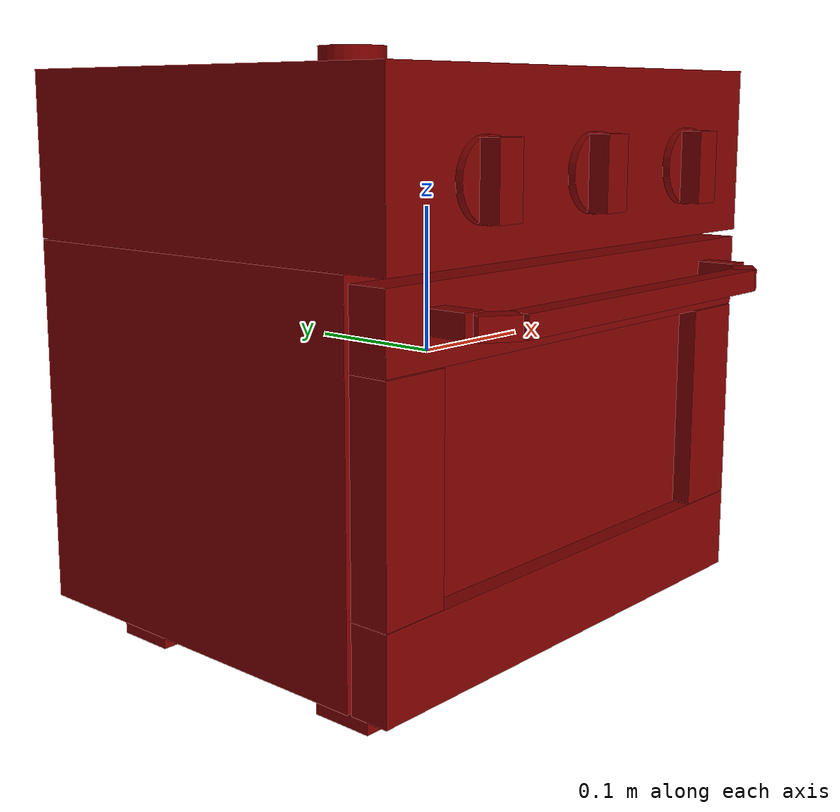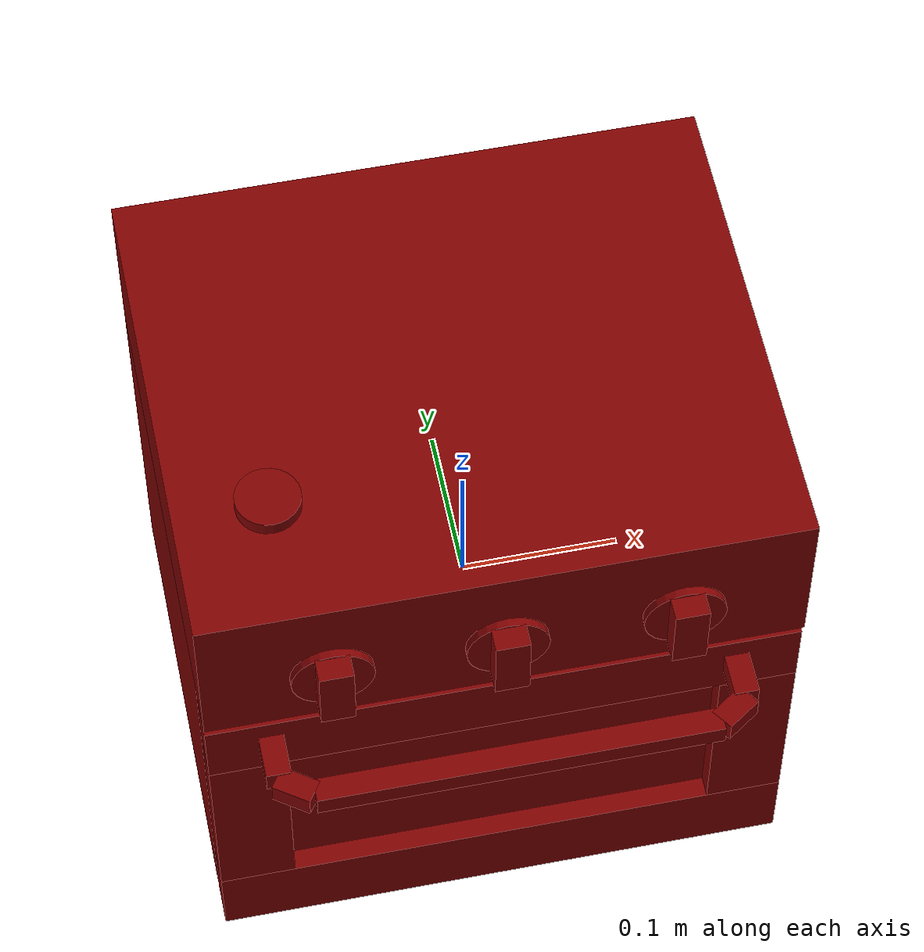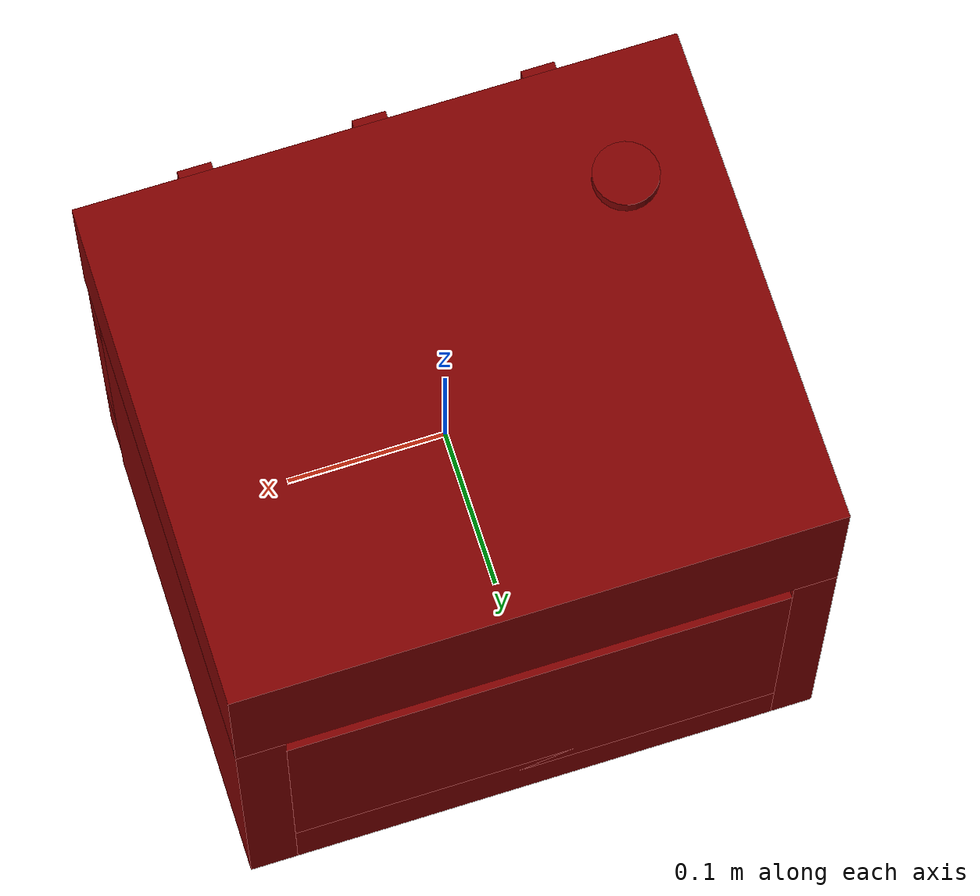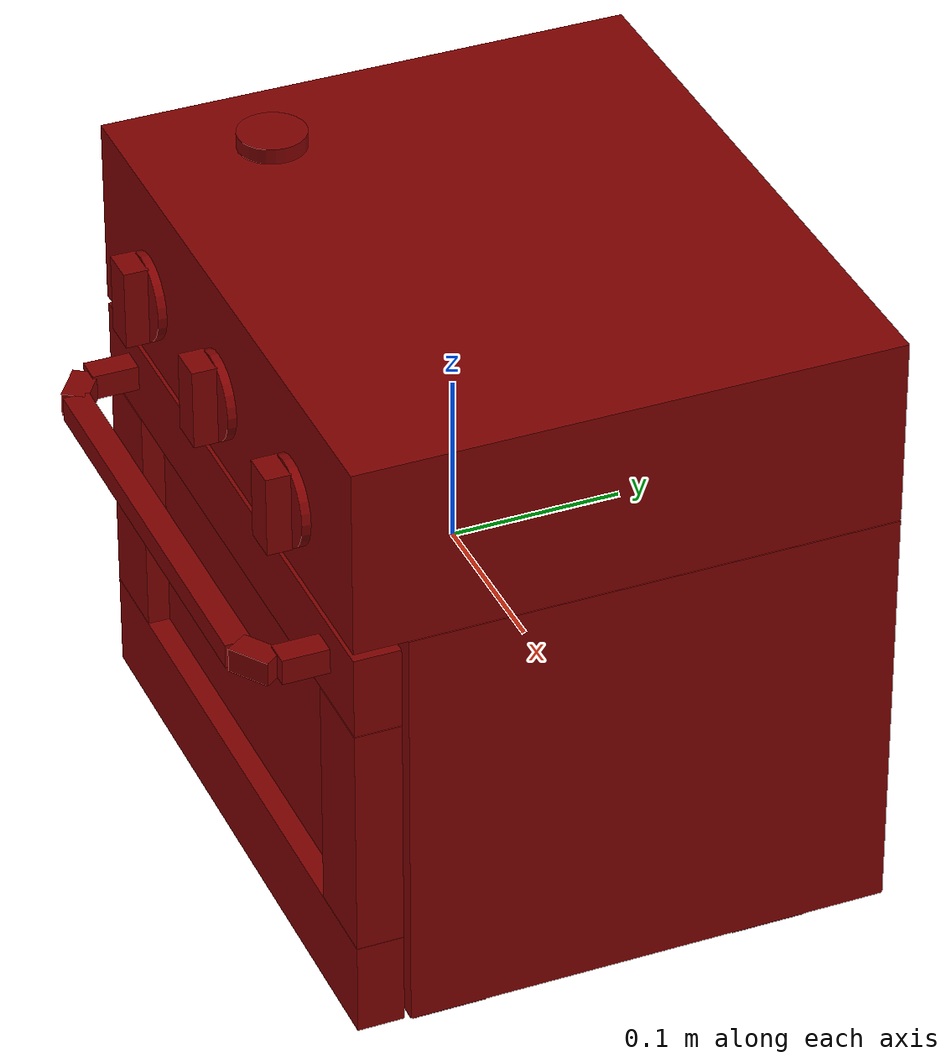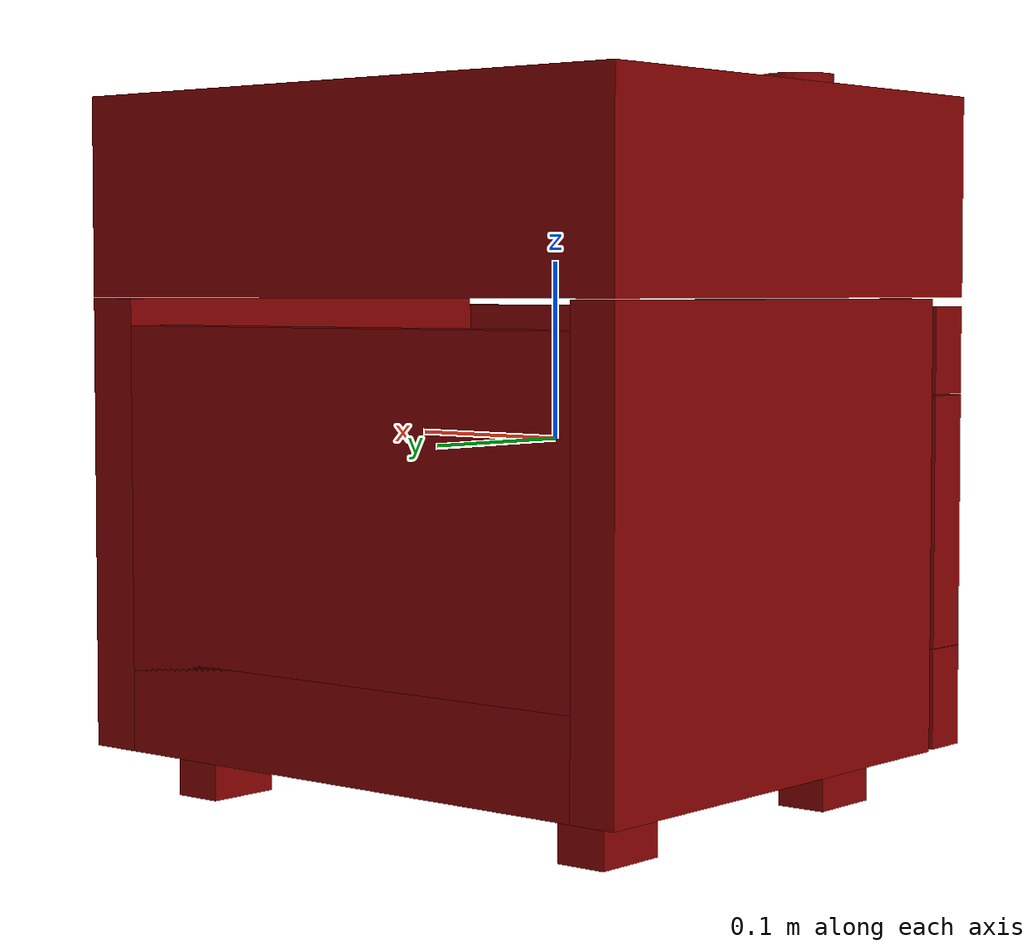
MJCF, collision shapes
<?xml version='1.0' encoding='UTF-8'?>
<mujoco model="model">
  <compiler angle="radian"/>
  <asset>
    <mesh file="visuals/Body001.obj" name="Body001_vis"/>
    <mesh file="visuals/Door001.obj" name="Door001_vis"/>
    <mesh file="visuals/Door001_Clear.obj" name="Door001_Clear_vis"/>
    <mesh file="visuals/Knob001.obj" name="Knob001_vis"/>
    <mesh file="visuals/Knob002.obj" name="Knob002_vis"/>
    <mesh file="visuals/Knob003.obj" name="Knob003_vis"/>
    <mesh file="visuals/Shelf001.obj" name="Shelf001_vis"/>
    <texture file="visuals/T_BC001.png" name="Body001_material" type="2d"/>
    <material name="Body001_material" rgba="1 1 1 1.0" texture="Body001_material" shininess="0.5" specular="1"/>
    <texture file="visuals/T_BC001.png" name="Door001_material" type="2d"/>
    <material name="Door001_material" rgba="1 1 1 1.0" texture="Door001_material" shininess="0.5" specular="1"/>
    <material name="Door001_Clear_material" rgba="0.021757163107395172 0.021757163107395172 0.021757163107395172 0.800000011920929" shininess="0.4472135901451111" specular="0.3103448502657381"/>
    <texture file="visuals/T_BC001.png" name="Knob001_material" type="2d"/>
    <material name="Knob001_material" rgba="1 1 1 1.0" texture="Knob001_material" shininess="0.5" specular="0.3103448502657381"/>
    <texture file="visuals/T_BC001.png" name="Knob002_material" type="2d"/>
    <material name="Knob002_material" rgba="1 1 1 1.0" texture="Knob002_material" shininess="0.5" specular="0.3103448502657381"/>
    <texture file="visuals/T_BC001.png" name="Knob003_material" type="2d"/>
    <material name="Knob003_material" rgba="1 1 1 1.0" texture="Knob003_material" shininess="0.5" specular="0.3103448502657381"/>
    <texture file="visuals/T_BC001.png" name="Shelf001_material" type="2d"/>
    <material name="Shelf001_material" rgba="1 1 1 1.0" texture="Shelf001_material" shininess="0.5" specular="11"/>
  </asset>
  <default>
    <default class="visual">
      <geom conaffinity="0" contype="0" group="1" type="mesh"/>
    </default>
    <default class="collision">
      <geom group="0" rgba="0.5 0 0 0.5"/>
    </default>
    <default class="spawn">
      <geom group="0" rgba="1 1 1 0.5" contype="0" conaffinity="0"/>
      <site group="0" rgba="1 1 1 0.5"/>
    </default>
    <default class="region">
      <geom group="1" conaffinity="0" contype="0" rgba="0 1 0 0"/>
    </default>
  </default>
  <worldbody>
    <body>
      <body name="object">
        <geom mesh="Body001_vis" type="mesh" solimp="0.998 0.998 0.001" solref="0.001 1" density="100" friction="0.95 0.3 0.1" class="visual" material="Body001_material"/>
        <geom class="collision" type="box" pos="2.852175384759903e-09 0.024101076647639275 0.1357605755329132" size="0.18508854508399963 0.15699924528598785 0.055739786475896835" quat="1.0 0.0 0.0 0.0"/>
        <geom class="collision" type="box" pos="0.16979986429214478 0.039555624127388 -0.04654950648546219" size="0.01528869103640318 0.14154471457004547 0.1259056031703949" quat="1.0 0.0 0.0 0.0"/>
        <geom class="collision" type="box" pos="-0.17158065736293793 0.039555624127388 -0.04654950648546219" size="0.013507887721061707 0.14154471457004547 0.1259056031703949" quat="1.0 0.0 0.0 0.0"/>
        <geom class="collision" type="box" pos="-0.001145911286585033 0.039555624127388 -0.14608407020568848" size="0.16024622321128845 0.14154471457004547 0.026371030136942863" quat="1.0 0.0 0.0 0.0"/>
        <geom class="collision" type="box" pos="0.13840268552303314 -0.06583800166845322 -0.18757016956806183" size="0.014635629020631313 0.02180272527039051 0.014033558778464794" quat="1.0 0.0 0.0 0.0"/>
        <geom class="collision" type="box" pos="-0.13884401321411133 -0.06583800166845322 -0.18757016956806183" size="0.014635629020631313 0.02180272527039051 0.014033558778464794" quat="1.0 0.0 0.0 0.0"/>
        <geom class="collision" type="box" pos="-0.13884401321411133 0.12719383835792542 -0.18757016956806183" size="0.014635629020631313 0.02180272527039051 0.014033558778464794" quat="1.0 0.0 0.0 0.0"/>
        <geom class="collision" type="box" pos="0.13840268552303314 0.12719383835792542 -0.18757016956806183" size="0.014635629020631313 0.02180272527039051 0.014033558778464794" quat="1.0 0.0 0.0 0.0"/>
        <geom class="collision" type="box" pos="-0.001145911286585033 0.16271737217903137 -0.033729590475559235" size="0.16024622321128845 0.018382957205176353 0.09829637408256531" quat="1.0 0.0 0.0 0.0"/>
        <geom class="collision" type="cylinder" pos="-0.12738053500652313 -0.053947120904922485 0.19717708230018616" size="0.0199985820800066 0.0046111056581139565" quat="1.0 0.0 0.0 0.0"/>
        <body name="Door001">
          <joint axis="1.0 0.0 0.0" pos="-0.0004288032650947571 -0.10672692954540253 -0.1699555367231369" limited="true" name="Door001_joint" range="0.0 1.5707963267948966" type="hinge" damping="1" frictionloss="1" armature=".01" stiffness="1" springref="-0.4"/>
          <geom mesh="Door001_vis" type="mesh" solimp="0.998 0.998 0.001" solref="0.001 1" density="100" friction="0.95 0.3 0.1" class="visual" material="Door001_material"/>
          <geom class="collision" type="box" pos="-0.0004418120952323079 -0.11903399229049683 0.050599973648786545" size="0.1846461445093155 0.013507278636097908 0.024286596104502678" quat="1.0 0.0 0.0 0.0"/>
          <geom class="collision" type="box" pos="-0.0004418120952323079 -0.11903399229049683 -0.14370819926261902" size="0.18464617431163788 0.013507280498743057 0.028107164427638054" quat="1.0 0.0 0.0 0.0"/>
          <geom class="collision" type="box" pos="0.15989476442337036 -0.11903399229049683 -0.044859565794467926" size="0.02431010641157627 0.013507282361388206 0.07044404745101929" quat="1.0 0.0 0.0 0.0"/>
          <geom class="collision" type="box" pos="-0.16092289984226227 -0.11903399229049683 -0.044859565794467926" size="0.02416558377444744 0.013507284224033356 0.07044406235218048" quat="1.0 0.0 0.0 0.0"/>
          <geom class="collision" type="box" pos="7.993763574631885e-05 -0.17382845282554626 0.05253109708428383" size="0.12579500675201416 0.007679699920117855 0.007168726529926062" quat="1.0 0.0 0.0 0.0"/>
          <geom class="collision" type="box" pos="0.13491736352443695 -0.16760671138763428 0.05253109708428383" size="0.012498950585722923 0.007679718546569347 0.007168740965425968" quat="0.9546672701835632 0.0 0.0 0.2976749837398529"/>
          <geom class="collision" type="box" pos="0.14402510225772858 -0.1461496204137802 0.05339349806308746" size="0.007692680228501558 0.013507288880646229 0.007585875224322081" quat="1.0 0.0 0.0 0.0"/>
          <geom class="collision" type="box" pos="-0.14513513445854187 -0.1461496204137802 0.05339349806308746" size="0.00769268162548542 0.013507290743291378 0.007585876155644655" quat="1.0 0.0 0.0 0.0"/>
          <geom class="collision" type="box" pos="-0.13602739572525024 -0.16760671138763428 0.05253109708428383" size="0.012498950585722923 0.007679718546569347 0.007168740965425968" quat="0.954667329788208 0.0 -0.0 -0.29767486453056335"/>
          <body name="Door001_Clear">
            <geom mesh="Door001_Clear_vis" type="mesh" solimp="0.998 0.998 0.001" solref="0.001 1" density="100" friction="0.95 0.3 0.1" class="visual" material="Door001_Clear_material"/>
            <geom class="collision" type="box" pos="-0.0004287729971110821 -0.11865300685167313 -0.04464877024292946" size="0.14006547629833221 0.0008621452143415809 0.07160481065511703" quat="1.0 0.0 0.0 0.0"/>
          </body>
        </body>
        <body name="Knob001">
          <joint axis="0.0 0.9999999403953552 0.0" pos="-0.10621856153011322 -0.14094994962215424 0.12773217260837555" limited="true" name="Knob001_joint" range="0.0 5.078908123303499" type="hinge" damping="0.05" armature="0.001"/>
          <geom mesh="Knob001_vis" type="mesh" solimp="0.998 0.998 0.001" solref="0.001 1" density="100" friction="0.95 0.3 0.1" class="visual" material="Knob001_material"/>
          <geom class="collision" type="cylinder" pos="-0.10627137869596481 -0.13721776008605957 0.1276916265487671" size="0.025301121175289154 0.0025892877019941807" quat="0.7071067094802856 0.7071068286895752 0.0 0.0"/>
          <geom class="collision" type="box" pos="-0.10621856153011322 -0.14638282358646393 0.12773217260837555" size="0.010509218089282513 0.007276811636984348 0.02365013211965561" quat="1.0 0.0 0.0 0.0"/>
        </body>
        <body name="Knob002">
          <joint axis="0.0 1.0 0.0" pos="-0.0009228978306055069 -0.14116448163986206 0.12765637040138245" limited="true" name="Knob002_joint" range="0.0 4.886921905584122" type="hinge" damping="0.05" armature="0.001"/>
          <geom mesh="Knob002_vis" type="mesh" solimp="0.998 0.998 0.001" solref="0.001 1" density="100" friction="0.95 0.3 0.1" class="visual" material="Knob002_material"/>
          <geom class="collision" type="cylinder" pos="-0.0007735916296951473 -0.13705313205718994 0.1276916265487671" size="0.025301121175289154 0.0025892877019941807" quat="0.7071067094802856 0.7071068286895752 0.0 0.0"/>
          <geom class="collision" type="box" pos="-0.0011445118580013514 -0.14638282358646393 0.12773217260837555" size="0.010509219020605087 0.007276811636984348 0.023650135844945908" quat="1.0 0.0 0.0 0.0"/>
        </body>
        <body name="Knob003">
          <joint axis="0.0 1.0 0.0" pos="0.10676044225692749 -0.14094993472099304 0.12804697453975677" limited="true" name="Knob003_joint" range="0.0 4.71238898038469" type="hinge" damping="0.05" armature="0.001" springref="-0.4"/>
          <geom mesh="Knob003_vis" type="mesh" solimp="0.998 0.998 0.001" solref="0.001 1" density="100" friction="0.95 0.3 0.1" class="visual" material="Knob003_material"/>
          <geom class="collision" type="cylinder" pos="0.10678509622812271 -0.13699854910373688 0.12805821001529694" size="0.025301121175289154 0.0025892877019941807" quat="0.7071067094802856 0.7071068286895752 0.0 0.0"/>
          <geom class="collision" type="box" pos="0.1067410409450531 -0.14638282358646393 0.12773217260837555" size="0.010509220883250237 0.007276811636984348 0.023650137707591057" quat="1.0 0.0 0.0 0.0"/>
        </body>
        <body name="Shelf001">
          <joint axis="0.0 -1.0 0.0" pos="-0.0023382380604743958 0.004356682300567627 -0.0849299430847168" limited="true" name="Shelf001_joint" range="0.0 0.15" type="slide" damping="1" frictionloss="1" armature=".01" stiffness="0.05"/>
          <geom mesh="Shelf001_vis" type="mesh" solimp="0.998 0.998 0.001" solref="0.001 1" density="100" friction="0.95 0.3 0.1" class="visual" material="Shelf001_material"/>
          <geom class="collision" type="box" pos="-0.0019281281856819987 0.004307358991354704 -0.09186424314975739" size="0.12804536521434784 0.07639605551958084 0.001664346200414002" quat="1.0 0.0 0.0 0.0"/>
          <geom class="collision" type="box" pos="-0.153961643576622 0.004307358991354704 -0.07758800685405731" size="0.0022650649771094322 0.07639606297016144 0.0021299475338310003" quat="1.0 0.0 0.0 0.0"/>
          <geom class="collision" type="box" pos="-0.13991807401180267 0.07912177592515945 -0.08168124407529831" size="0.014179379679262638 0.0015818689716979861 0.0036437641829252243" quat="0.9227885603904724 2.2248139864010667e-15 0.385306715965271 5.1769355025044206e-08"/>
          <geom class="collision" type="box" pos="-0.13991807401180267 -0.070330910384655 -0.08168124407529831" size="0.014179379679262638 0.0015818689716979861 0.0036437641829252243" quat="0.9227885603904724 2.2248139864010667e-15 0.385306715965271 5.1769355025044206e-08"/>
          <geom class="collision" type="box" pos="0.13507962226867676 -0.070330910384655 -0.08168124407529831" size="0.014179379679262638 0.0015818689716979861 0.003643763717263937" quat="0.9227885603904724 1.0946873392296812e-14 -0.3853067457675934 -5.1769358577757885e-08"/>
          <geom class="collision" type="box" pos="0.13507962226867676 0.07912177592515945 -0.08168124407529831" size="0.014179379679262638 0.0015818689716979861 0.003643763717263937" quat="0.9227885603904724 1.0946873392296812e-14 -0.3853067457675934 -5.1769358577757885e-08"/>
          <geom class="collision" type="box" pos="0.1491232067346573 0.004307359457015991 -0.07758800685405731" size="0.0022650654427707195 0.07639607787132263 0.0021299479994922876" quat="1.0 0.0 0.0 0.0"/>
        </body>
        <geom class="region" name="reg_main" type="box" pos="-3.725290298461914e-09 0.023391472175717354 1.0713934898376465e-05" size="0.18508854508399963 0.15770885348320007 0.20161445438861847"/>
        <geom class="region" name="reg_int" type="box" pos="-0.00029561668634414673 0.025090154260396957 -0.03421427309513092" size="0.15923865884542465 0.12958857789635658 0.0984850525856018"/>
      </body>
    </body>
  </worldbody>
  <actuator>
    <motor name="Door001_joint_actuator" joint="Door001_joint" gear="10"/>
    <motor name="Knob001_joint_actuator" joint="Knob001_joint" gear="10"/>
    <motor name="Knob002_joint_actuator" joint="Knob002_joint" gear="10"/>
    <motor name="Knob003_joint_actuator" joint="Knob003_joint" gear="10"/>
    <motor name="Shelf001_joint_actuator" joint="Shelf001_joint" gear="10"/>
  </actuator>
</mujoco>
